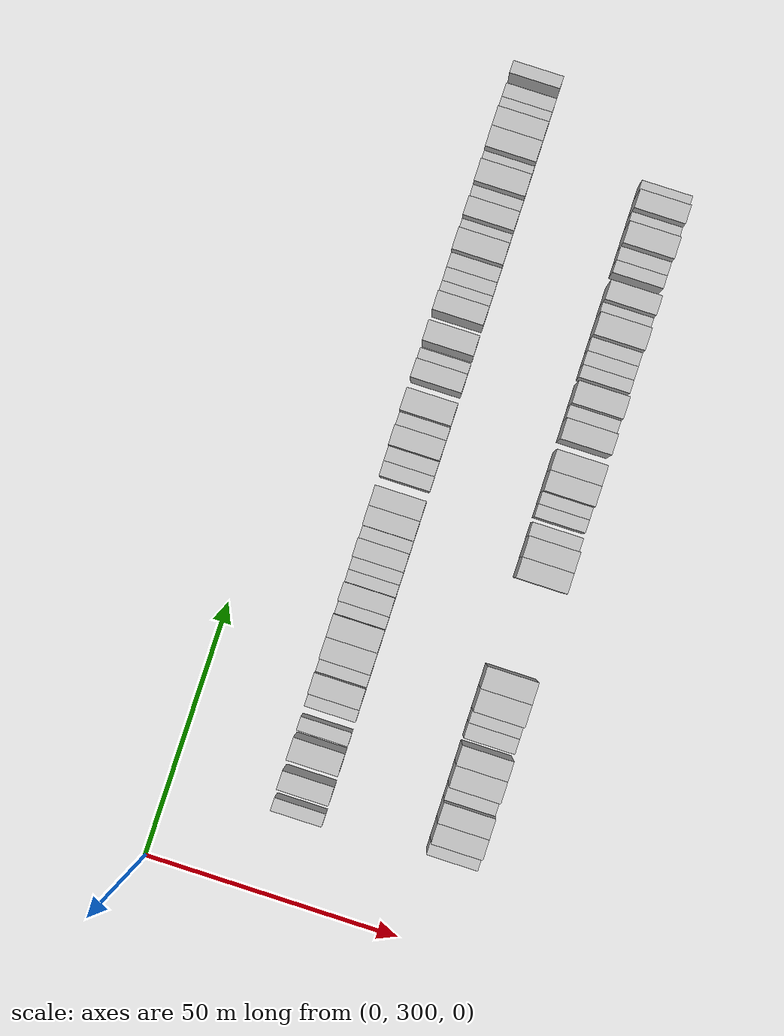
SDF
<sdf version="1.6">
 <world name="default">
  <model name="building_188">
   <static>1</static>
   <pose>25.0000 317.4822 0 0.000000 0.000000 0.000000</pose>
   <link name="link">
    <pose>0 0 3.00 0 0 0</pose>
    <collision name="collision"><geometry><box><size>10.0000 2.5526 6.0000</size></box></geometry></collision>
    <visual name="visual">
     <cast_shadows>0</cast_shadows>
     <geometry><box><size>10.0000 2.5526 6.0000</size></box></geometry>
     <material>
      <script>
       <uri>model://HANNAS_wall/materials/scripts</uri>
       <uri>model://HANNAS_wall/materials/textures</uri>
       <name>vrc/HANNAS_wall</name>
      </script>
     </material>
    </visual>
   </link>
  </model>
  <model name="building_189">
   <static>1</static>
   <pose>25.0000 322.5915 0 0.000000 0.000000 0.000000</pose>
   <link name="link">
    <pose>0 0 4.50 0 0 0</pose>
    <collision name="collision"><geometry><box><size>10.0000 3.6659 9.0000</size></box></geometry></collision>
    <visual name="visual">
     <cast_shadows>0</cast_shadows>
     <geometry><box><size>10.0000 3.6659 9.0000</size></box></geometry>
     <material>
      <script>
       <uri>model://HANNAS_wall/materials/scripts</uri>
       <uri>model://HANNAS_wall/materials/textures</uri>
       <name>vrc/HANNAS_wall</name>
      </script>
     </material>
    </visual>
   </link>
  </model>
  <model name="building_190">
   <static>1</static>
   <pose>25.0000 328.6178 0 0.000000 0.000000 0.000000</pose>
   <link name="link">
    <pose>0 0 4.50 0 0 0</pose>
    <collision name="collision"><geometry><box><size>10.0000 4.3866 9.0000</size></box></geometry></collision>
    <visual name="visual">
     <cast_shadows>0</cast_shadows>
     <geometry><box><size>10.0000 4.3866 9.0000</size></box></geometry>
     <material>
      <script>
       <uri>model://HANNAS_wall/materials/scripts</uri>
       <uri>model://HANNAS_wall/materials/textures</uri>
       <name>vrc/HANNAS_wall</name>
      </script>
     </material>
    </visual>
   </link>
  </model>
  <model name="building_191">
   <static>1</static>
   <pose>25.0000 333.1557 0 0.000000 0.000000 0.000000</pose>
   <link name="link">
    <pose>0 0 3.00 0 0 0</pose>
    <collision name="collision"><geometry><box><size>10.0000 2.6892 6.0000</size></box></geometry></collision>
    <visual name="visual">
     <cast_shadows>0</cast_shadows>
     <geometry><box><size>10.0000 2.6892 6.0000</size></box></geometry>
     <material>
      <script>
       <uri>model://HANNAS_wall/materials/scripts</uri>
       <uri>model://HANNAS_wall/materials/textures</uri>
       <name>vrc/HANNAS_wall</name>
      </script>
     </material>
    </visual>
   </link>
  </model>
  <model name="building_192">
   <static>1</static>
   <pose>25.0000 337.8295 0 0.000000 0.000000 0.000000</pose>
   <link name="link">
    <pose>0 0 3.00 0 0 0</pose>
    <collision name="collision"><geometry><box><size>10.0000 2.6583 6.0000</size></box></geometry></collision>
    <visual name="visual">
     <cast_shadows>0</cast_shadows>
     <geometry><box><size>10.0000 2.6583 6.0000</size></box></geometry>
     <material>
      <script>
       <uri>model://HANNAS_wall/materials/scripts</uri>
       <uri>model://HANNAS_wall/materials/textures</uri>
       <name>vrc/HANNAS_wall</name>
      </script>
     </material>
    </visual>
   </link>
  </model>
  <model name="building_193">
   <static>1</static>
   <pose>25.0000 341.2098 0 0.000000 0.000000 0.000000</pose>
   <link name="link">
    <pose>0 0 4.50 0 0 0</pose>
    <collision name="collision"><geometry><box><size>10.0000 4.1024 9.0000</size></box></geometry></collision>
    <visual name="visual">
     <cast_shadows>0</cast_shadows>
     <geometry><box><size>10.0000 4.1024 9.0000</size></box></geometry>
     <material>
      <script>
       <uri>model://HANNAS_wall/materials/scripts</uri>
       <uri>model://HANNAS_wall/materials/textures</uri>
       <name>vrc/HANNAS_wall</name>
      </script>
     </material>
    </visual>
   </link>
  </model>
  <model name="building_194">
   <static>1</static>
   <pose>25.0000 344.5808 0 0.000000 0.000000 0.000000</pose>
   <link name="link">
    <pose>0 0 3.00 0 0 0</pose>
    <collision name="collision"><geometry><box><size>10.0000 2.6396 6.0000</size></box></geometry></collision>
    <visual name="visual">
     <cast_shadows>0</cast_shadows>
     <geometry><box><size>10.0000 2.6396 6.0000</size></box></geometry>
     <material>
      <script>
       <uri>model://HANNAS_wall/materials/scripts</uri>
       <uri>model://HANNAS_wall/materials/textures</uri>
       <name>vrc/HANNAS_wall</name>
      </script>
     </material>
    </visual>
   </link>
  </model>
  <model name="building_195">
   <static>1</static>
   <pose>25.0000 348.0173 0 0.000000 0.000000 0.000000</pose>
   <link name="link">
    <pose>0 0 4.50 0 0 0</pose>
    <collision name="collision"><geometry><box><size>10.0000 4.2335 9.0000</size></box></geometry></collision>
    <visual name="visual">
     <cast_shadows>0</cast_shadows>
     <geometry><box><size>10.0000 4.2335 9.0000</size></box></geometry>
     <material>
      <script>
       <uri>model://HANNAS_wall/materials/scripts</uri>
       <uri>model://HANNAS_wall/materials/textures</uri>
       <name>vrc/HANNAS_wall</name>
      </script>
     </material>
    </visual>
   </link>
  </model>
  <model name="building_196">
   <static>1</static>
   <pose>25.0000 352.3588 0 0.000000 0.000000 0.000000</pose>
   <link name="link">
    <pose>0 0 4.50 0 0 0</pose>
    <collision name="collision"><geometry><box><size>10.0000 4.4495 9.0000</size></box></geometry></collision>
    <visual name="visual">
     <cast_shadows>0</cast_shadows>
     <geometry><box><size>10.0000 4.4495 9.0000</size></box></geometry>
     <material>
      <script>
       <uri>model://HANNAS_wall/materials/scripts</uri>
       <uri>model://HANNAS_wall/materials/textures</uri>
       <name>vrc/HANNAS_wall</name>
      </script>
     </material>
    </visual>
   </link>
  </model>
  <model name="building_197">
   <static>1</static>
   <pose>25.0000 355.8623 0 0.000000 0.000000 0.000000</pose>
   <link name="link">
    <pose>0 0 3.00 0 0 0</pose>
    <collision name="collision"><geometry><box><size>10.0000 2.5575 6.0000</size></box></geometry></collision>
    <visual name="visual">
     <cast_shadows>0</cast_shadows>
     <geometry><box><size>10.0000 2.5575 6.0000</size></box></geometry>
     <material>
      <script>
       <uri>model://HANNAS_wall/materials/scripts</uri>
       <uri>model://HANNAS_wall/materials/textures</uri>
       <name>vrc/HANNAS_wall</name>
      </script>
     </material>
    </visual>
   </link>
  </model>
  <model name="building_198">
   <static>1</static>
   <pose>25.0000 358.9742 0 0.000000 0.000000 0.000000</pose>
   <link name="link">
    <pose>0 0 4.50 0 0 0</pose>
    <collision name="collision"><geometry><box><size>10.0000 3.6662 9.0000</size></box></geometry></collision>
    <visual name="visual">
     <cast_shadows>0</cast_shadows>
     <geometry><box><size>10.0000 3.6662 9.0000</size></box></geometry>
     <material>
      <script>
       <uri>model://HANNAS_wall/materials/scripts</uri>
       <uri>model://HANNAS_wall/materials/textures</uri>
       <name>vrc/HANNAS_wall</name>
      </script>
     </material>
    </visual>
   </link>
  </model>
  <model name="building_199">
   <static>1</static>
   <pose>25.0000 362.0153 0 0.000000 0.000000 0.000000</pose>
   <link name="link">
    <pose>0 0 3.00 0 0 0</pose>
    <collision name="collision"><geometry><box><size>10.0000 2.4160 6.0000</size></box></geometry></collision>
    <visual name="visual">
     <cast_shadows>0</cast_shadows>
     <geometry><box><size>10.0000 2.4160 6.0000</size></box></geometry>
     <material>
      <script>
       <uri>model://HANNAS_wall/materials/scripts</uri>
       <uri>model://HANNAS_wall/materials/textures</uri>
       <name>vrc/HANNAS_wall</name>
      </script>
     </material>
    </visual>
   </link>
  </model>
  <model name="building_200">
   <static>1</static>
   <pose>25.0000 364.4840 0 0.000000 0.000000 0.000000</pose>
   <link name="link">
    <pose>0 0 3.00 0 0 0</pose>
    <collision name="collision"><geometry><box><size>10.0000 2.5213 6.0000</size></box></geometry></collision>
    <visual name="visual">
     <cast_shadows>0</cast_shadows>
     <geometry><box><size>10.0000 2.5213 6.0000</size></box></geometry>
     <material>
      <script>
       <uri>model://HANNAS_wall/materials/scripts</uri>
       <uri>model://HANNAS_wall/materials/textures</uri>
       <name>vrc/HANNAS_wall</name>
      </script>
     </material>
    </visual>
   </link>
  </model>
  <model name="building_201">
   <static>1</static>
   <pose>25.0000 367.5469 0 0.000000 0.000000 0.000000</pose>
   <link name="link">
    <pose>0 0 4.50 0 0 0</pose>
    <collision name="collision"><geometry><box><size>10.0000 3.6045 9.0000</size></box></geometry></collision>
    <visual name="visual">
     <cast_shadows>0</cast_shadows>
     <geometry><box><size>10.0000 3.6045 9.0000</size></box></geometry>
     <material>
      <script>
       <uri>model://HANNAS_wall/materials/scripts</uri>
       <uri>model://HANNAS_wall/materials/textures</uri>
       <name>vrc/HANNAS_wall</name>
      </script>
     </material>
    </visual>
   </link>
  </model>
  <model name="building_202">
   <static>1</static>
   <pose>25.0000 370.5729 0 0.000000 0.000000 0.000000</pose>
   <link name="link">
    <pose>0 0 3.00 0 0 0</pose>
    <collision name="collision"><geometry><box><size>10.0000 2.4476 6.0000</size></box></geometry></collision>
    <visual name="visual">
     <cast_shadows>0</cast_shadows>
     <geometry><box><size>10.0000 2.4476 6.0000</size></box></geometry>
     <material>
      <script>
       <uri>model://HANNAS_wall/materials/scripts</uri>
       <uri>model://HANNAS_wall/materials/textures</uri>
       <name>vrc/HANNAS_wall</name>
      </script>
     </material>
    </visual>
   </link>
  </model>
  <model name="building_203">
   <static>1</static>
   <pose>25.0000 373.7235 0 0.000000 0.000000 0.000000</pose>
   <link name="link">
    <pose>0 0 4.50 0 0 0</pose>
    <collision name="collision"><geometry><box><size>10.0000 3.8536 9.0000</size></box></geometry></collision>
    <visual name="visual">
     <cast_shadows>0</cast_shadows>
     <geometry><box><size>10.0000 3.8536 9.0000</size></box></geometry>
     <material>
      <script>
       <uri>model://HANNAS_wall/materials/scripts</uri>
       <uri>model://HANNAS_wall/materials/textures</uri>
       <name>vrc/HANNAS_wall</name>
      </script>
     </material>
    </visual>
   </link>
  </model>
  <model name="building_204">
   <static>1</static>
   <pose>25.0000 377.6120 0 0.000000 0.000000 0.000000</pose>
   <link name="link">
    <pose>0 0 4.50 0 0 0</pose>
    <collision name="collision"><geometry><box><size>10.0000 3.9235 9.0000</size></box></geometry></collision>
    <visual name="visual">
     <cast_shadows>0</cast_shadows>
     <geometry><box><size>10.0000 3.9235 9.0000</size></box></geometry>
     <material>
      <script>
       <uri>model://HANNAS_wall/materials/scripts</uri>
       <uri>model://HANNAS_wall/materials/textures</uri>
       <name>vrc/HANNAS_wall</name>
      </script>
     </material>
    </visual>
   </link>
  </model>
  <model name="building_205">
   <static>1</static>
   <pose>25.0000 383.0562 0 0.000000 0.000000 0.000000</pose>
   <link name="link">
    <pose>0 0 3.00 0 0 0</pose>
    <collision name="collision"><geometry><box><size>10.0000 2.9647 6.0000</size></box></geometry></collision>
    <visual name="visual">
     <cast_shadows>0</cast_shadows>
     <geometry><box><size>10.0000 2.9647 6.0000</size></box></geometry>
     <material>
      <script>
       <uri>model://HANNAS_wall/materials/scripts</uri>
       <uri>model://HANNAS_wall/materials/textures</uri>
       <name>vrc/HANNAS_wall</name>
      </script>
     </material>
    </visual>
   </link>
  </model>
  <model name="building_206">
   <static>1</static>
   <pose>25.0000 385.9914 0 0.000000 0.000000 0.000000</pose>
   <link name="link">
    <pose>0 0 3.00 0 0 0</pose>
    <collision name="collision"><geometry><box><size>10.0000 2.9058 6.0000</size></box></geometry></collision>
    <visual name="visual">
     <cast_shadows>0</cast_shadows>
     <geometry><box><size>10.0000 2.9058 6.0000</size></box></geometry>
     <material>
      <script>
       <uri>model://HANNAS_wall/materials/scripts</uri>
       <uri>model://HANNAS_wall/materials/textures</uri>
       <name>vrc/HANNAS_wall</name>
      </script>
     </material>
    </visual>
   </link>
  </model>
  <model name="building_207">
   <static>1</static>
   <pose>25.0000 389.4239 0 0.000000 0.000000 0.000000</pose>
   <link name="link">
    <pose>0 0 4.50 0 0 0</pose>
    <collision name="collision"><geometry><box><size>10.0000 3.9594 9.0000</size></box></geometry></collision>
    <visual name="visual">
     <cast_shadows>0</cast_shadows>
     <geometry><box><size>10.0000 3.9594 9.0000</size></box></geometry>
     <material>
      <script>
       <uri>model://HANNAS_wall/materials/scripts</uri>
       <uri>model://HANNAS_wall/materials/textures</uri>
       <name>vrc/HANNAS_wall</name>
      </script>
     </material>
    </visual>
   </link>
  </model>
  <model name="building_208">
   <static>1</static>
   <pose>25.0000 392.8003 0 0.000000 0.000000 0.000000</pose>
   <link name="link">
    <pose>0 0 3.00 0 0 0</pose>
    <collision name="collision"><geometry><box><size>10.0000 2.7933 6.0000</size></box></geometry></collision>
    <visual name="visual">
     <cast_shadows>0</cast_shadows>
     <geometry><box><size>10.0000 2.7933 6.0000</size></box></geometry>
     <material>
      <script>
       <uri>model://HANNAS_wall/materials/scripts</uri>
       <uri>model://HANNAS_wall/materials/textures</uri>
       <name>vrc/HANNAS_wall</name>
      </script>
     </material>
    </visual>
   </link>
  </model>
  <model name="building_209">
   <static>1</static>
   <pose>25.0000 396.4226 0 0.000000 0.000000 0.000000</pose>
   <link name="link">
    <pose>0 0 4.50 0 0 0</pose>
    <collision name="collision"><geometry><box><size>10.0000 4.4514 9.0000</size></box></geometry></collision>
    <visual name="visual">
     <cast_shadows>0</cast_shadows>
     <geometry><box><size>10.0000 4.4514 9.0000</size></box></geometry>
     <material>
      <script>
       <uri>model://HANNAS_wall/materials/scripts</uri>
       <uri>model://HANNAS_wall/materials/textures</uri>
       <name>vrc/HANNAS_wall</name>
      </script>
     </material>
    </visual>
   </link>
  </model>
  <model name="building_210">
   <static>1</static>
   <pose>25.0000 402.5126 0 0.000000 0.000000 0.000000</pose>
   <link name="link">
    <pose>0 0 4.50 0 0 0</pose>
    <collision name="collision"><geometry><box><size>10.0000 3.7287 9.0000</size></box></geometry></collision>
    <visual name="visual">
     <cast_shadows>0</cast_shadows>
     <geometry><box><size>10.0000 3.7287 9.0000</size></box></geometry>
     <material>
      <script>
       <uri>model://HANNAS_wall/materials/scripts</uri>
       <uri>model://HANNAS_wall/materials/textures</uri>
       <name>vrc/HANNAS_wall</name>
      </script>
     </material>
    </visual>
   </link>
  </model>
  <model name="building_211">
   <static>1</static>
   <pose>25.0000 405.6218 0 0.000000 0.000000 0.000000</pose>
   <link name="link">
    <pose>0 0 3.00 0 0 0</pose>
    <collision name="collision"><geometry><box><size>10.0000 2.4897 6.0000</size></box></geometry></collision>
    <visual name="visual">
     <cast_shadows>0</cast_shadows>
     <geometry><box><size>10.0000 2.4897 6.0000</size></box></geometry>
     <material>
      <script>
       <uri>model://HANNAS_wall/materials/scripts</uri>
       <uri>model://HANNAS_wall/materials/textures</uri>
       <name>vrc/HANNAS_wall</name>
      </script>
     </material>
    </visual>
   </link>
  </model>
  <model name="building_212">
   <static>1</static>
   <pose>25.0000 409.8824 0 0.000000 0.000000 0.000000</pose>
   <link name="link">
    <pose>0 0 4.50 0 0 0</pose>
    <collision name="collision"><geometry><box><size>10.0000 4.0314 9.0000</size></box></geometry></collision>
    <visual name="visual">
     <cast_shadows>0</cast_shadows>
     <geometry><box><size>10.0000 4.0314 9.0000</size></box></geometry>
     <material>
      <script>
       <uri>model://HANNAS_wall/materials/scripts</uri>
       <uri>model://HANNAS_wall/materials/textures</uri>
       <name>vrc/HANNAS_wall</name>
      </script>
     </material>
    </visual>
   </link>
  </model>
  <model name="building_213">
   <static>1</static>
   <pose>25.0000 415.7768 0 0.000000 0.000000 0.000000</pose>
   <link name="link">
    <pose>0 0 4.50 0 0 0</pose>
    <collision name="collision"><geometry><box><size>10.0000 3.7573 9.0000</size></box></geometry></collision>
    <visual name="visual">
     <cast_shadows>0</cast_shadows>
     <geometry><box><size>10.0000 3.7573 9.0000</size></box></geometry>
     <material>
      <script>
       <uri>model://HANNAS_wall/materials/scripts</uri>
       <uri>model://HANNAS_wall/materials/textures</uri>
       <name>vrc/HANNAS_wall</name>
      </script>
     </material>
    </visual>
   </link>
  </model>
  <model name="building_214">
   <static>1</static>
   <pose>25.0000 418.9249 0 0.000000 0.000000 0.000000</pose>
   <link name="link">
    <pose>0 0 3.00 0 0 0</pose>
    <collision name="collision"><geometry><box><size>10.0000 2.5390 6.0000</size></box></geometry></collision>
    <visual name="visual">
     <cast_shadows>0</cast_shadows>
     <geometry><box><size>10.0000 2.5390 6.0000</size></box></geometry>
     <material>
      <script>
       <uri>model://HANNAS_wall/materials/scripts</uri>
       <uri>model://HANNAS_wall/materials/textures</uri>
       <name>vrc/HANNAS_wall</name>
      </script>
     </material>
    </visual>
   </link>
  </model>
  <model name="building_215">
   <static>1</static>
   <pose>25.0000 421.5405 0 0.000000 0.000000 0.000000</pose>
   <link name="link">
    <pose>0 0 3.00 0 0 0</pose>
    <collision name="collision"><geometry><box><size>10.0000 2.6921 6.0000</size></box></geometry></collision>
    <visual name="visual">
     <cast_shadows>0</cast_shadows>
     <geometry><box><size>10.0000 2.6921 6.0000</size></box></geometry>
     <material>
      <script>
       <uri>model://HANNAS_wall/materials/scripts</uri>
       <uri>model://HANNAS_wall/materials/textures</uri>
       <name>vrc/HANNAS_wall</name>
      </script>
     </material>
    </visual>
   </link>
  </model>
  <model name="building_216">
   <static>1</static>
   <pose>25.0000 424.3270 0 0.000000 0.000000 0.000000</pose>
   <link name="link">
    <pose>0 0 3.00 0 0 0</pose>
    <collision name="collision"><geometry><box><size>10.0000 2.8811 6.0000</size></box></geometry></collision>
    <visual name="visual">
     <cast_shadows>0</cast_shadows>
     <geometry><box><size>10.0000 2.8811 6.0000</size></box></geometry>
     <material>
      <script>
       <uri>model://HANNAS_wall/materials/scripts</uri>
       <uri>model://HANNAS_wall/materials/textures</uri>
       <name>vrc/HANNAS_wall</name>
      </script>
     </material>
    </visual>
   </link>
  </model>
  <model name="building_217">
   <static>1</static>
   <pose>25.0000 427.9325 0 0.000000 0.000000 0.000000</pose>
   <link name="link">
    <pose>0 0 4.50 0 0 0</pose>
    <collision name="collision"><geometry><box><size>10.0000 4.3298 9.0000</size></box></geometry></collision>
    <visual name="visual">
     <cast_shadows>0</cast_shadows>
     <geometry><box><size>10.0000 4.3298 9.0000</size></box></geometry>
     <material>
      <script>
       <uri>model://HANNAS_wall/materials/scripts</uri>
       <uri>model://HANNAS_wall/materials/textures</uri>
       <name>vrc/HANNAS_wall</name>
      </script>
     </material>
    </visual>
   </link>
  </model>
  <model name="building_218">
   <static>1</static>
   <pose>25.0000 431.3029 0 0.000000 0.000000 0.000000</pose>
   <link name="link">
    <pose>0 0 3.00 0 0 0</pose>
    <collision name="collision"><geometry><box><size>10.0000 2.4111 6.0000</size></box></geometry></collision>
    <visual name="visual">
     <cast_shadows>0</cast_shadows>
     <geometry><box><size>10.0000 2.4111 6.0000</size></box></geometry>
     <material>
      <script>
       <uri>model://HANNAS_wall/materials/scripts</uri>
       <uri>model://HANNAS_wall/materials/textures</uri>
       <name>vrc/HANNAS_wall</name>
      </script>
     </material>
    </visual>
   </link>
  </model>
  <model name="building_219">
   <static>1</static>
   <pose>25.0000 434.3943 0 0.000000 0.000000 0.000000</pose>
   <link name="link">
    <pose>0 0 4.50 0 0 0</pose>
    <collision name="collision"><geometry><box><size>10.0000 3.7719 9.0000</size></box></geometry></collision>
    <visual name="visual">
     <cast_shadows>0</cast_shadows>
     <geometry><box><size>10.0000 3.7719 9.0000</size></box></geometry>
     <material>
      <script>
       <uri>model://HANNAS_wall/materials/scripts</uri>
       <uri>model://HANNAS_wall/materials/textures</uri>
       <name>vrc/HANNAS_wall</name>
      </script>
     </material>
    </visual>
   </link>
  </model>
  <model name="building_220">
   <static>1</static>
   <pose>25.0000 437.7642 0 0.000000 0.000000 0.000000</pose>
   <link name="link">
    <pose>0 0 3.00 0 0 0</pose>
    <collision name="collision"><geometry><box><size>10.0000 2.9679 6.0000</size></box></geometry></collision>
    <visual name="visual">
     <cast_shadows>0</cast_shadows>
     <geometry><box><size>10.0000 2.9679 6.0000</size></box></geometry>
     <material>
      <script>
       <uri>model://HANNAS_wall/materials/scripts</uri>
       <uri>model://HANNAS_wall/materials/textures</uri>
       <name>vrc/HANNAS_wall</name>
      </script>
     </material>
    </visual>
   </link>
  </model>
  <model name="building_221">
   <static>1</static>
   <pose>25.0000 441.4568 0 0.000000 0.000000 0.000000</pose>
   <link name="link">
    <pose>0 0 4.50 0 0 0</pose>
    <collision name="collision"><geometry><box><size>10.0000 4.4173 9.0000</size></box></geometry></collision>
    <visual name="visual">
     <cast_shadows>0</cast_shadows>
     <geometry><box><size>10.0000 4.4173 9.0000</size></box></geometry>
     <material>
      <script>
       <uri>model://HANNAS_wall/materials/scripts</uri>
       <uri>model://HANNAS_wall/materials/textures</uri>
       <name>vrc/HANNAS_wall</name>
      </script>
     </material>
    </visual>
   </link>
  </model>
  <model name="building_222">
   <static>1</static>
   <pose>25.0000 444.8700 0 0.000000 0.000000 0.000000</pose>
   <link name="link">
    <pose>0 0 3.00 0 0 0</pose>
    <collision name="collision"><geometry><box><size>10.0000 2.4091 6.0000</size></box></geometry></collision>
    <visual name="visual">
     <cast_shadows>0</cast_shadows>
     <geometry><box><size>10.0000 2.4091 6.0000</size></box></geometry>
     <material>
      <script>
       <uri>model://HANNAS_wall/materials/scripts</uri>
       <uri>model://HANNAS_wall/materials/textures</uri>
       <name>vrc/HANNAS_wall</name>
      </script>
     </material>
    </visual>
   </link>
  </model>
  <model name="building_223">
   <static>1</static>
   <pose>25.0000 448.1514 0 0.000000 0.000000 0.000000</pose>
   <link name="link">
    <pose>0 0 4.50 0 0 0</pose>
    <collision name="collision"><geometry><box><size>10.0000 4.1535 9.0000</size></box></geometry></collision>
    <visual name="visual">
     <cast_shadows>0</cast_shadows>
     <geometry><box><size>10.0000 4.1535 9.0000</size></box></geometry>
     <material>
      <script>
       <uri>model://HANNAS_wall/materials/scripts</uri>
       <uri>model://HANNAS_wall/materials/textures</uri>
       <name>vrc/HANNAS_wall</name>
      </script>
     </material>
    </visual>
   </link>
  </model>
  <model name="building_224">
   <static>1</static>
   <pose>25.0000 452.1452 0 0.000000 0.000000 0.000000</pose>
   <link name="link">
    <pose>0 0 4.50 0 0 0</pose>
    <collision name="collision"><geometry><box><size>10.0000 3.8342 9.0000</size></box></geometry></collision>
    <visual name="visual">
     <cast_shadows>0</cast_shadows>
     <geometry><box><size>10.0000 3.8342 9.0000</size></box></geometry>
     <material>
      <script>
       <uri>model://HANNAS_wall/materials/scripts</uri>
       <uri>model://HANNAS_wall/materials/textures</uri>
       <name>vrc/HANNAS_wall</name>
      </script>
     </material>
    </visual>
   </link>
  </model>
  <model name="building_225">
   <static>1</static>
   <pose>25.0000 455.4799 0 0.000000 0.000000 0.000000</pose>
   <link name="link">
    <pose>0 0 3.00 0 0 0</pose>
    <collision name="collision"><geometry><box><size>10.0000 2.8350 6.0000</size></box></geometry></collision>
    <visual name="visual">
     <cast_shadows>0</cast_shadows>
     <geometry><box><size>10.0000 2.8350 6.0000</size></box></geometry>
     <material>
      <script>
       <uri>model://HANNAS_wall/materials/scripts</uri>
       <uri>model://HANNAS_wall/materials/textures</uri>
       <name>vrc/HANNAS_wall</name>
      </script>
     </material>
    </visual>
   </link>
  </model>
  <model name="building_226">
   <static>1</static>
   <pose>25.0000 458.2595 0 0.000000 0.000000 0.000000</pose>
   <link name="link">
    <pose>0 0 3.00 0 0 0</pose>
    <collision name="collision"><geometry><box><size>10.0000 2.7243 6.0000</size></box></geometry></collision>
    <visual name="visual">
     <cast_shadows>0</cast_shadows>
     <geometry><box><size>10.0000 2.7243 6.0000</size></box></geometry>
     <material>
      <script>
       <uri>model://HANNAS_wall/materials/scripts</uri>
       <uri>model://HANNAS_wall/materials/textures</uri>
       <name>vrc/HANNAS_wall</name>
      </script>
     </material>
    </visual>
   </link>
  </model>
  <model name="building_227">
   <static>1</static>
   <pose>25.0000 462.8587 0 0.000000 0.000000 0.000000</pose>
   <link name="link">
    <pose>0 0 3.00 0 0 0</pose>
    <collision name="collision"><geometry><box><size>10.0000 2.4741 6.0000</size></box></geometry></collision>
    <visual name="visual">
     <cast_shadows>0</cast_shadows>
     <geometry><box><size>10.0000 2.4741 6.0000</size></box></geometry>
     <material>
      <script>
       <uri>model://HANNAS_wall/materials/scripts</uri>
       <uri>model://HANNAS_wall/materials/textures</uri>
       <name>vrc/HANNAS_wall</name>
      </script>
     </material>
    </visual>
   </link>
  </model>
  <model name="building_424">
   <static>1</static>
   <pose>55.0000 318.7257 0 0.000000 0.000000 0.000000</pose>
   <link name="link">
    <pose>0 0 3.00 0 0 0</pose>
    <collision name="collision"><geometry><box><size>10.0000 2.6565 6.0000</size></box></geometry></collision>
    <visual name="visual">
     <cast_shadows>0</cast_shadows>
     <geometry><box><size>10.0000 2.6565 6.0000</size></box></geometry>
     <material>
      <script>
       <uri>model://HANNAS_wall/materials/scripts</uri>
       <uri>model://HANNAS_wall/materials/textures</uri>
       <name>vrc/HANNAS_wall</name>
      </script>
     </material>
    </visual>
   </link>
  </model>
  <model name="building_425">
   <static>1</static>
   <pose>55.0000 322.0228 0 0.000000 0.000000 0.000000</pose>
   <link name="link">
    <pose>0 0 4.50 0 0 0</pose>
    <collision name="collision"><geometry><box><size>10.0000 3.9377 9.0000</size></box></geometry></collision>
    <visual name="visual">
     <cast_shadows>0</cast_shadows>
     <geometry><box><size>10.0000 3.9377 9.0000</size></box></geometry>
     <material>
      <script>
       <uri>model://HANNAS_wall/materials/scripts</uri>
       <uri>model://HANNAS_wall/materials/textures</uri>
       <name>vrc/HANNAS_wall</name>
      </script>
     </material>
    </visual>
   </link>
  </model>
  <model name="building_426">
   <static>1</static>
   <pose>55.0000 325.9949 0 0.000000 0.000000 0.000000</pose>
   <link name="link">
    <pose>0 0 4.50 0 0 0</pose>
    <collision name="collision"><geometry><box><size>10.0000 4.0065 9.0000</size></box></geometry></collision>
    <visual name="visual">
     <cast_shadows>0</cast_shadows>
     <geometry><box><size>10.0000 4.0065 9.0000</size></box></geometry>
     <material>
      <script>
       <uri>model://HANNAS_wall/materials/scripts</uri>
       <uri>model://HANNAS_wall/materials/textures</uri>
       <name>vrc/HANNAS_wall</name>
      </script>
     </material>
    </visual>
   </link>
  </model>
  <model name="building_427">
   <static>1</static>
   <pose>55.0000 329.4207 0 0.000000 0.000000 0.000000</pose>
   <link name="link">
    <pose>0 0 3.00 0 0 0</pose>
    <collision name="collision"><geometry><box><size>10.0000 2.8451 6.0000</size></box></geometry></collision>
    <visual name="visual">
     <cast_shadows>0</cast_shadows>
     <geometry><box><size>10.0000 2.8451 6.0000</size></box></geometry>
     <material>
      <script>
       <uri>model://HANNAS_wall/materials/scripts</uri>
       <uri>model://HANNAS_wall/materials/textures</uri>
       <name>vrc/HANNAS_wall</name>
      </script>
     </material>
    </visual>
   </link>
  </model>
  <model name="building_428">
   <static>1</static>
   <pose>55.0000 332.9553 0 0.000000 0.000000 0.000000</pose>
   <link name="link">
    <pose>0 0 4.50 0 0 0</pose>
    <collision name="collision"><geometry><box><size>10.0000 4.2240 9.0000</size></box></geometry></collision>
    <visual name="visual">
     <cast_shadows>0</cast_shadows>
     <geometry><box><size>10.0000 4.2240 9.0000</size></box></geometry>
     <material>
      <script>
       <uri>model://HANNAS_wall/materials/scripts</uri>
       <uri>model://HANNAS_wall/materials/textures</uri>
       <name>vrc/HANNAS_wall</name>
      </script>
     </material>
    </visual>
   </link>
  </model>
  <model name="building_429">
   <static>1</static>
   <pose>55.0000 337.0132 0 0.000000 0.000000 0.000000</pose>
   <link name="link">
    <pose>0 0 4.50 0 0 0</pose>
    <collision name="collision"><geometry><box><size>10.0000 3.8918 9.0000</size></box></geometry></collision>
    <visual name="visual">
     <cast_shadows>0</cast_shadows>
     <geometry><box><size>10.0000 3.8918 9.0000</size></box></geometry>
     <material>
      <script>
       <uri>model://HANNAS_wall/materials/scripts</uri>
       <uri>model://HANNAS_wall/materials/textures</uri>
       <name>vrc/HANNAS_wall</name>
      </script>
     </material>
    </visual>
   </link>
  </model>
  <model name="building_430">
   <static>1</static>
   <pose>55.0000 341.4442 0 0.000000 0.000000 0.000000</pose>
   <link name="link">
    <pose>0 0 3.00 0 0 0</pose>
    <collision name="collision"><geometry><box><size>10.0000 2.9702 6.0000</size></box></geometry></collision>
    <visual name="visual">
     <cast_shadows>0</cast_shadows>
     <geometry><box><size>10.0000 2.9702 6.0000</size></box></geometry>
     <material>
      <script>
       <uri>model://HANNAS_wall/materials/scripts</uri>
       <uri>model://HANNAS_wall/materials/textures</uri>
       <name>vrc/HANNAS_wall</name>
      </script>
     </material>
    </visual>
   </link>
  </model>
  <model name="building_431">
   <static>1</static>
   <pose>55.0000 344.1730 0 0.000000 0.000000 0.000000</pose>
   <link name="link">
    <pose>0 0 3.00 0 0 0</pose>
    <collision name="collision"><geometry><box><size>10.0000 2.4874 6.0000</size></box></geometry></collision>
    <visual name="visual">
     <cast_shadows>0</cast_shadows>
     <geometry><box><size>10.0000 2.4874 6.0000</size></box></geometry>
     <material>
      <script>
       <uri>model://HANNAS_wall/materials/scripts</uri>
       <uri>model://HANNAS_wall/materials/textures</uri>
       <name>vrc/HANNAS_wall</name>
      </script>
     </material>
    </visual>
   </link>
  </model>
  <model name="building_432">
   <static>1</static>
   <pose>55.0000 347.6256 0 0.000000 0.000000 0.000000</pose>
   <link name="link">
    <pose>0 0 4.50 0 0 0</pose>
    <collision name="collision"><geometry><box><size>10.0000 4.4180 9.0000</size></box></geometry></collision>
    <visual name="visual">
     <cast_shadows>0</cast_shadows>
     <geometry><box><size>10.0000 4.4180 9.0000</size></box></geometry>
     <material>
      <script>
       <uri>model://HANNAS_wall/materials/scripts</uri>
       <uri>model://HANNAS_wall/materials/textures</uri>
       <name>vrc/HANNAS_wall</name>
      </script>
     </material>
    </visual>
   </link>
  </model>
  <model name="building_433">
   <static>1</static>
   <pose>55.0000 351.9978 0 0.000000 0.000000 0.000000</pose>
   <link name="link">
    <pose>0 0 4.50 0 0 0</pose>
    <collision name="collision"><geometry><box><size>10.0000 4.3264 9.0000</size></box></geometry></collision>
    <visual name="visual">
     <cast_shadows>0</cast_shadows>
     <geometry><box><size>10.0000 4.3264 9.0000</size></box></geometry>
     <material>
      <script>
       <uri>model://HANNAS_wall/materials/scripts</uri>
       <uri>model://HANNAS_wall/materials/textures</uri>
       <name>vrc/HANNAS_wall</name>
      </script>
     </material>
    </visual>
   </link>
  </model>
  <model name="building_434">
   <static>1</static>
   <pose>55.0000 373.2502 0 0.000000 0.000000 0.000000</pose>
   <link name="link">
    <pose>0 0 4.50 0 0 0</pose>
    <collision name="collision"><geometry><box><size>10.0000 4.0594 9.0000</size></box></geometry></collision>
    <visual name="visual">
     <cast_shadows>0</cast_shadows>
     <geometry><box><size>10.0000 4.0594 9.0000</size></box></geometry>
     <material>
      <script>
       <uri>model://HANNAS_wall/materials/scripts</uri>
       <uri>model://HANNAS_wall/materials/textures</uri>
       <name>vrc/HANNAS_wall</name>
      </script>
     </material>
    </visual>
   </link>
  </model>
  <model name="building_435">
   <static>1</static>
   <pose>55.0000 377.3252 0 0.000000 0.000000 0.000000</pose>
   <link name="link">
    <pose>0 0 4.50 0 0 0</pose>
    <collision name="collision"><geometry><box><size>10.0000 4.0906 9.0000</size></box></geometry></collision>
    <visual name="visual">
     <cast_shadows>0</cast_shadows>
     <geometry><box><size>10.0000 4.0906 9.0000</size></box></geometry>
     <material>
      <script>
       <uri>model://HANNAS_wall/materials/scripts</uri>
       <uri>model://HANNAS_wall/materials/textures</uri>
       <name>vrc/HANNAS_wall</name>
      </script>
     </material>
    </visual>
   </link>
  </model>
  <model name="building_436">
   <static>1</static>
   <pose>55.0000 380.7556 0 0.000000 0.000000 0.000000</pose>
   <link name="link">
    <pose>0 0 3.00 0 0 0</pose>
    <collision name="collision"><geometry><box><size>10.0000 2.7703 6.0000</size></box></geometry></collision>
    <visual name="visual">
     <cast_shadows>0</cast_shadows>
     <geometry><box><size>10.0000 2.7703 6.0000</size></box></geometry>
     <material>
      <script>
       <uri>model://HANNAS_wall/materials/scripts</uri>
       <uri>model://HANNAS_wall/materials/textures</uri>
       <name>vrc/HANNAS_wall</name>
      </script>
     </material>
    </visual>
   </link>
  </model>
  <model name="building_437">
   <static>1</static>
   <pose>55.0000 384.4266 0 0.000000 0.000000 0.000000</pose>
   <link name="link">
    <pose>0 0 3.00 0 0 0</pose>
    <collision name="collision"><geometry><box><size>10.0000 2.5717 6.0000</size></box></geometry></collision>
    <visual name="visual">
     <cast_shadows>0</cast_shadows>
     <geometry><box><size>10.0000 2.5717 6.0000</size></box></geometry>
     <material>
      <script>
       <uri>model://HANNAS_wall/materials/scripts</uri>
       <uri>model://HANNAS_wall/materials/textures</uri>
       <name>vrc/HANNAS_wall</name>
      </script>
     </material>
    </visual>
   </link>
  </model>
  <model name="building_438">
   <static>1</static>
   <pose>55.0000 386.9328 0 0.000000 0.000000 0.000000</pose>
   <link name="link">
    <pose>0 0 3.00 0 0 0</pose>
    <collision name="collision"><geometry><box><size>10.0000 2.4406 6.0000</size></box></geometry></collision>
    <visual name="visual">
     <cast_shadows>0</cast_shadows>
     <geometry><box><size>10.0000 2.4406 6.0000</size></box></geometry>
     <material>
      <script>
       <uri>model://HANNAS_wall/materials/scripts</uri>
       <uri>model://HANNAS_wall/materials/textures</uri>
       <name>vrc/HANNAS_wall</name>
      </script>
     </material>
    </visual>
   </link>
  </model>
  <model name="building_439">
   <static>1</static>
   <pose>55.0000 390.1632 0 0.000000 0.000000 0.000000</pose>
   <link name="link">
    <pose>0 0 4.50 0 0 0</pose>
    <collision name="collision"><geometry><box><size>10.0000 4.0202 9.0000</size></box></geometry></collision>
    <visual name="visual">
     <cast_shadows>0</cast_shadows>
     <geometry><box><size>10.0000 4.0202 9.0000</size></box></geometry>
     <material>
      <script>
       <uri>model://HANNAS_wall/materials/scripts</uri>
       <uri>model://HANNAS_wall/materials/textures</uri>
       <name>vrc/HANNAS_wall</name>
      </script>
     </material>
    </visual>
   </link>
  </model>
  <model name="building_440">
   <static>1</static>
   <pose>55.0000 394.2039 0 0.000000 0.000000 0.000000</pose>
   <link name="link">
    <pose>0 0 4.50 0 0 0</pose>
    <collision name="collision"><geometry><box><size>10.0000 4.0612 9.0000</size></box></geometry></collision>
    <visual name="visual">
     <cast_shadows>0</cast_shadows>
     <geometry><box><size>10.0000 4.0612 9.0000</size></box></geometry>
     <material>
      <script>
       <uri>model://HANNAS_wall/materials/scripts</uri>
       <uri>model://HANNAS_wall/materials/textures</uri>
       <name>vrc/HANNAS_wall</name>
      </script>
     </material>
    </visual>
   </link>
  </model>
  <model name="building_441">
   <static>1</static>
   <pose>55.0000 400.3018 0 0.000000 0.000000 0.000000</pose>
   <link name="link">
    <pose>0 0 4.50 0 0 0</pose>
    <collision name="collision"><geometry><box><size>10.0000 4.1346 9.0000</size></box></geometry></collision>
    <visual name="visual">
     <cast_shadows>0</cast_shadows>
     <geometry><box><size>10.0000 4.1346 9.0000</size></box></geometry>
     <material>
      <script>
       <uri>model://HANNAS_wall/materials/scripts</uri>
       <uri>model://HANNAS_wall/materials/textures</uri>
       <name>vrc/HANNAS_wall</name>
      </script>
     </material>
    </visual>
   </link>
  </model>
  <model name="building_442">
   <static>1</static>
   <pose>55.0000 403.8071 0 0.000000 0.000000 0.000000</pose>
   <link name="link">
    <pose>0 0 3.00 0 0 0</pose>
    <collision name="collision"><geometry><box><size>10.0000 2.8761 6.0000</size></box></geometry></collision>
    <visual name="visual">
     <cast_shadows>0</cast_shadows>
     <geometry><box><size>10.0000 2.8761 6.0000</size></box></geometry>
     <material>
      <script>
       <uri>model://HANNAS_wall/materials/scripts</uri>
       <uri>model://HANNAS_wall/materials/textures</uri>
       <name>vrc/HANNAS_wall</name>
      </script>
     </material>
    </visual>
   </link>
  </model>
  <model name="building_443">
   <static>1</static>
   <pose>55.0000 407.4451 0 0.000000 0.000000 0.000000</pose>
   <link name="link">
    <pose>0 0 4.50 0 0 0</pose>
    <collision name="collision"><geometry><box><size>10.0000 4.3999 9.0000</size></box></geometry></collision>
    <visual name="visual">
     <cast_shadows>0</cast_shadows>
     <geometry><box><size>10.0000 4.3999 9.0000</size></box></geometry>
     <material>
      <script>
       <uri>model://HANNAS_wall/materials/scripts</uri>
       <uri>model://HANNAS_wall/materials/textures</uri>
       <name>vrc/HANNAS_wall</name>
      </script>
     </material>
    </visual>
   </link>
  </model>
  <model name="building_444">
   <static>1</static>
   <pose>55.0000 411.9297 0 0.000000 0.000000 0.000000</pose>
   <link name="link">
    <pose>0 0 3.00 0 0 0</pose>
    <collision name="collision"><geometry><box><size>10.0000 2.5693 6.0000</size></box></geometry></collision>
    <visual name="visual">
     <cast_shadows>0</cast_shadows>
     <geometry><box><size>10.0000 2.5693 6.0000</size></box></geometry>
     <material>
      <script>
       <uri>model://HANNAS_wall/materials/scripts</uri>
       <uri>model://HANNAS_wall/materials/textures</uri>
       <name>vrc/HANNAS_wall</name>
      </script>
     </material>
    </visual>
   </link>
  </model>
  <model name="building_445">
   <static>1</static>
   <pose>55.0000 414.5759 0 0.000000 0.000000 0.000000</pose>
   <link name="link">
    <pose>0 0 3.00 0 0 0</pose>
    <collision name="collision"><geometry><box><size>10.0000 2.7230 6.0000</size></box></geometry></collision>
    <visual name="visual">
     <cast_shadows>0</cast_shadows>
     <geometry><box><size>10.0000 2.7230 6.0000</size></box></geometry>
     <material>
      <script>
       <uri>model://HANNAS_wall/materials/scripts</uri>
       <uri>model://HANNAS_wall/materials/textures</uri>
       <name>vrc/HANNAS_wall</name>
      </script>
     </material>
    </visual>
   </link>
  </model>
  <model name="building_446">
   <static>1</static>
   <pose>55.0000 417.2947 0 0.000000 0.000000 0.000000</pose>
   <link name="link">
    <pose>0 0 3.00 0 0 0</pose>
    <collision name="collision"><geometry><box><size>10.0000 2.7146 6.0000</size></box></geometry></collision>
    <visual name="visual">
     <cast_shadows>0</cast_shadows>
     <geometry><box><size>10.0000 2.7146 6.0000</size></box></geometry>
     <material>
      <script>
       <uri>model://HANNAS_wall/materials/scripts</uri>
       <uri>model://HANNAS_wall/materials/textures</uri>
       <name>vrc/HANNAS_wall</name>
      </script>
     </material>
    </visual>
   </link>
  </model>
  <model name="building_447">
   <static>1</static>
   <pose>55.0000 420.8872 0 0.000000 0.000000 0.000000</pose>
   <link name="link">
    <pose>0 0 4.50 0 0 0</pose>
    <collision name="collision"><geometry><box><size>10.0000 4.4704 9.0000</size></box></geometry></collision>
    <visual name="visual">
     <cast_shadows>0</cast_shadows>
     <geometry><box><size>10.0000 4.4704 9.0000</size></box></geometry>
     <material>
      <script>
       <uri>model://HANNAS_wall/materials/scripts</uri>
       <uri>model://HANNAS_wall/materials/textures</uri>
       <name>vrc/HANNAS_wall</name>
      </script>
     </material>
    </visual>
   </link>
  </model>
  <model name="building_448">
   <static>1</static>
   <pose>55.0000 424.3326 0 0.000000 0.000000 0.000000</pose>
   <link name="link">
    <pose>0 0 3.00 0 0 0</pose>
    <collision name="collision"><geometry><box><size>10.0000 2.4204 6.0000</size></box></geometry></collision>
    <visual name="visual">
     <cast_shadows>0</cast_shadows>
     <geometry><box><size>10.0000 2.4204 6.0000</size></box></geometry>
     <material>
      <script>
       <uri>model://HANNAS_wall/materials/scripts</uri>
       <uri>model://HANNAS_wall/materials/textures</uri>
       <name>vrc/HANNAS_wall</name>
      </script>
     </material>
    </visual>
   </link>
  </model>
  <model name="building_449">
   <static>1</static>
   <pose>55.0000 427.4735 0 0.000000 0.000000 0.000000</pose>
   <link name="link">
    <pose>0 0 4.50 0 0 0</pose>
    <collision name="collision"><geometry><box><size>10.0000 3.8615 9.0000</size></box></geometry></collision>
    <visual name="visual">
     <cast_shadows>0</cast_shadows>
     <geometry><box><size>10.0000 3.8615 9.0000</size></box></geometry>
     <material>
      <script>
       <uri>model://HANNAS_wall/materials/scripts</uri>
       <uri>model://HANNAS_wall/materials/textures</uri>
       <name>vrc/HANNAS_wall</name>
      </script>
     </material>
    </visual>
   </link>
  </model>
  <model name="building_450">
   <static>1</static>
   <pose>55.0000 432.6707 0 0.000000 0.000000 0.000000</pose>
   <link name="link">
    <pose>0 0 3.00 0 0 0</pose>
    <collision name="collision"><geometry><box><size>10.0000 2.5329 6.0000</size></box></geometry></collision>
    <visual name="visual">
     <cast_shadows>0</cast_shadows>
     <geometry><box><size>10.0000 2.5329 6.0000</size></box></geometry>
     <material>
      <script>
       <uri>model://HANNAS_wall/materials/scripts</uri>
       <uri>model://HANNAS_wall/materials/textures</uri>
       <name>vrc/HANNAS_wall</name>
      </script>
     </material>
    </visual>
   </link>
  </model>
  <model name="building_451">
   <static>1</static>
   <pose>55.0000 435.2918 0 0.000000 0.000000 0.000000</pose>
   <link name="link">
    <pose>0 0 3.00 0 0 0</pose>
    <collision name="collision"><geometry><box><size>10.0000 2.7092 6.0000</size></box></geometry></collision>
    <visual name="visual">
     <cast_shadows>0</cast_shadows>
     <geometry><box><size>10.0000 2.7092 6.0000</size></box></geometry>
     <material>
      <script>
       <uri>model://HANNAS_wall/materials/scripts</uri>
       <uri>model://HANNAS_wall/materials/textures</uri>
       <name>vrc/HANNAS_wall</name>
      </script>
     </material>
    </visual>
   </link>
  </model>
  <model name="building_452">
   <static>1</static>
   <pose>55.0000 438.8122 0 0.000000 0.000000 0.000000</pose>
   <link name="link">
    <pose>0 0 4.50 0 0 0</pose>
    <collision name="collision"><geometry><box><size>10.0000 4.3315 9.0000</size></box></geometry></collision>
    <visual name="visual">
     <cast_shadows>0</cast_shadows>
     <geometry><box><size>10.0000 4.3315 9.0000</size></box></geometry>
     <material>
      <script>
       <uri>model://HANNAS_wall/materials/scripts</uri>
       <uri>model://HANNAS_wall/materials/textures</uri>
       <name>vrc/HANNAS_wall</name>
      </script>
     </material>
    </visual>
   </link>
  </model>
  <model name="building_453">
   <static>1</static>
   <pose>55.0000 442.2596 0 0.000000 0.000000 0.000000</pose>
   <link name="link">
    <pose>0 0 3.00 0 0 0</pose>
    <collision name="collision"><geometry><box><size>10.0000 2.5634 6.0000</size></box></geometry></collision>
    <visual name="visual">
     <cast_shadows>0</cast_shadows>
     <geometry><box><size>10.0000 2.5634 6.0000</size></box></geometry>
     <material>
      <script>
       <uri>model://HANNAS_wall/materials/scripts</uri>
       <uri>model://HANNAS_wall/materials/textures</uri>
       <name>vrc/HANNAS_wall</name>
      </script>
     </material>
    </visual>
   </link>
  </model>
  <model name="building_454">
   <static>1</static>
   <pose>55.0000 445.3991 0 0.000000 0.000000 0.000000</pose>
   <link name="link">
    <pose>0 0 4.50 0 0 0</pose>
    <collision name="collision"><geometry><box><size>10.0000 3.7155 9.0000</size></box></geometry></collision>
    <visual name="visual">
     <cast_shadows>0</cast_shadows>
     <geometry><box><size>10.0000 3.7155 9.0000</size></box></geometry>
     <material>
      <script>
       <uri>model://HANNAS_wall/materials/scripts</uri>
       <uri>model://HANNAS_wall/materials/textures</uri>
       <name>vrc/HANNAS_wall</name>
      </script>
     </material>
    </visual>
   </link>
  </model>
  <model name="building_455">
   <static>1</static>
   <pose>55.0000 448.5297 0 0.000000 0.000000 0.000000</pose>
   <link name="link">
    <pose>0 0 3.00 0 0 0</pose>
    <collision name="collision"><geometry><box><size>10.0000 2.5456 6.0000</size></box></geometry></collision>
    <visual name="visual">
     <cast_shadows>0</cast_shadows>
     <geometry><box><size>10.0000 2.5456 6.0000</size></box></geometry>
     <material>
      <script>
       <uri>model://HANNAS_wall/materials/scripts</uri>
       <uri>model://HANNAS_wall/materials/textures</uri>
       <name>vrc/HANNAS_wall</name>
      </script>
     </material>
    </visual>
   </link>
  </model>
 </world>
</sdf>
